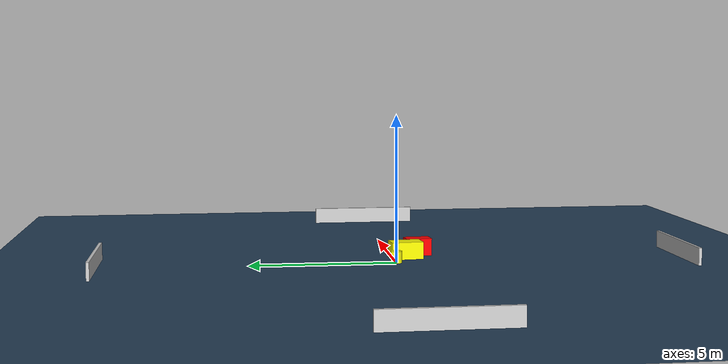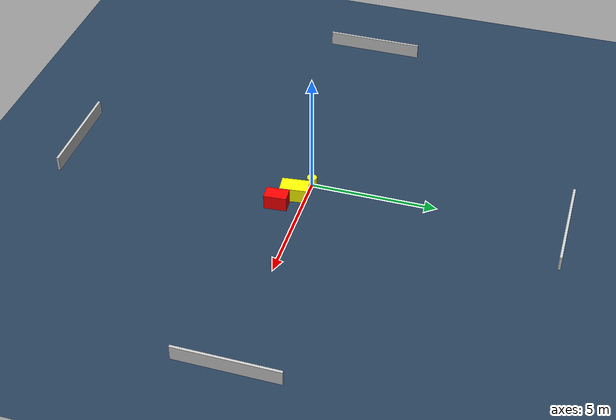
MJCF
<?xml version="1.0" ?>
<mujoco model="generated_environment">
  <option timestep="0.01" integrator="RK4" cone="elliptic"/>
  <default>
    <geom density="1"/>
  </default>
  <asset>
    <texture builtin="gradient" height="3072" name="skybox" rgb1="0.3 0.5 0.7" rgb2="0 0 0" type="skybox" width="512"/>
    <texture builtin="checker" height="300" name="groundplane" rgb1="0.2 0.3 0.4" rgb2="0.1 0.2 0.3" type="2d" width="300"/>
    <material name="groundplane" reflectance="0.2" texrepeat="5 5" texture="groundplane"/>
  </asset>
  <worldbody>
    <light dir="0 0 -1" directional="true" pos="0 0 1.5"/>
    <geom condim="3" friction="0.5 0.005 0.001" material="groundplane" name="floor" pos="0 0 0" size="0 0 0.05" type="plane"/>
    <body name="walls">
      <geom name="wall_1" condim="4" pos="-10.0 0.0 0.3" rgba="0.800000011920929 0.800000011920929 0.800000011920929 1.0" size="0.05 2.0 0.3" type="box"/>
      <geom name="wall_2" condim="4" pos="10.0 0.0 0.3" rgba="0.800000011920929 0.800000011920929 0.800000011920929 1.0" size="0.05 2.0 0.3" type="box"/>
      <geom name="wall_3" condim="4" pos="0.0 -10.0 0.3" rgba="0.800000011920929 0.800000011920929 0.800000011920929 1.0" size="2.0 0.05 0.3" type="box"/>
      <geom name="wall_4" condim="4" pos="0.0 10.0 0.3" rgba="0.800000011920929 0.800000011920929 0.800000011920929 1.0" size="2.0 0.05 0.3" type="box"/>
    </body>
    <body name="robot">
      <joint name="joint_x" type="slide" pos="0 0 0" axis="1 0 0"/>
      <joint name="joint_y" type="slide" pos="0 0 0" axis="0 1 0"/>
      <geom name="robot" type="cylinder" pos="0.0 0.0 0.2" size="0.2 0.2 0.0" mass="5.0" friction="1.0 0.005 0.0001" condim="4" rgba="1.0 1.0 0.0 1.0"/>
    </body>
    <body name="obstacle_1_movable">
      <geom name="obstacle_1_movable" condim="4" pos="0.8436665764659917 -0.450478085771527 0.3" euler="0 0 186.25253356921428" friction="0.0 0.005 0.001" rgba="1.0 1.0 0.0 1.0" size="0.3294143493595717 0.5479054105941128 0.3" type="box" mass="0.1"/>
      <joint type="free"/>
    </body>
    <body name="obstacle_2_static">
      <geom name="obstacle_2_static" condim="4" pos="1.5291186207746317 -0.9723568332696039 0.3" euler="0 0 94.3571763519775" friction="0.0 0.005 0.001" rgba="1.0 0.0 0.0 1.0" size="0.45004935472923857 0.28432205676653666 0.3" type="box"/>
    </body>
  </worldbody>
  <actuator>
    <motor name="actuator_x" joint="joint_x" gear="1" ctrlrange="-1 1"/>
    <motor name="actuator_y" joint="joint_y" gear="1" ctrlrange="-1 1"/>
  </actuator>
</mujoco>
